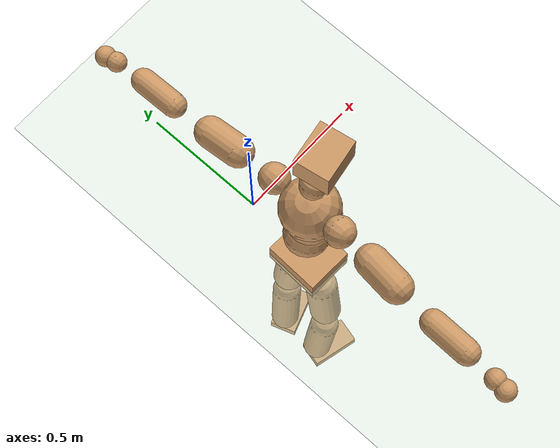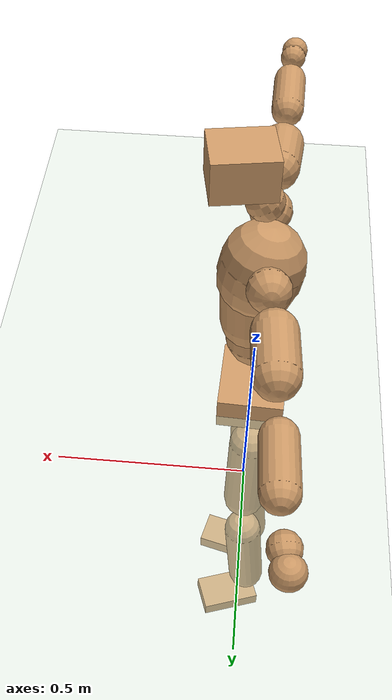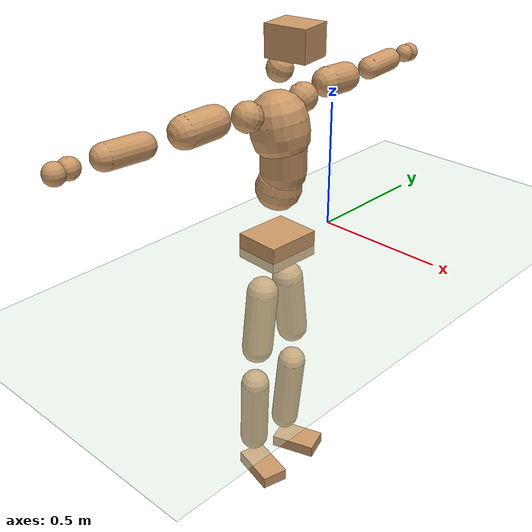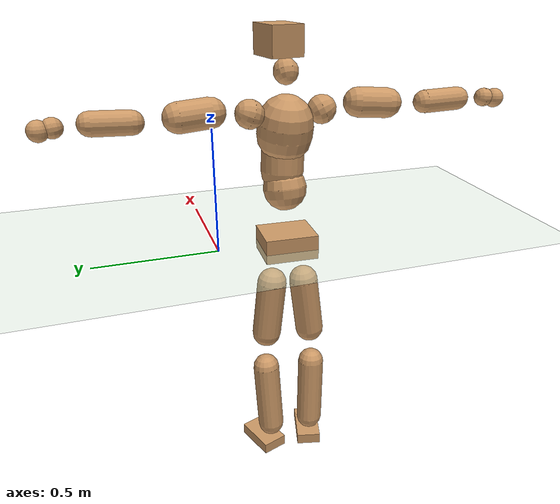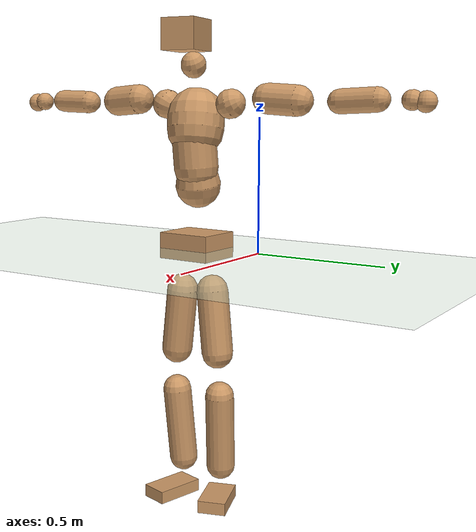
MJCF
<mujoco model="humanoid">
  <compiler coordinate="local" angle="radian"/>
  <default>
    <joint damping="0.0" armature="0.01" stiffness="0.0" limited="true"/>
    <geom conaffinity="1" condim="3" contype="7" margin="0.001" rgba="0.8 0.6 .4 1"/>
  </default>
  <asset>
    <texture type="skybox" builtin="gradient" rgb1=".4 .5 .6" rgb2="0 0 0" width="100" height="100"/>
    <texture builtin="flat" height="1278" mark="cross" markrgb="1 1 1" name="texgeom" random="0.01" rgb1="0.8 0.6 0.4" rgb2="0.8 0.6 0.4" type="cube" width="127"/>
    <texture builtin="checker" height="100" name="texplane" rgb1="0 0 0" rgb2="0.8 0.8 0.8" type="2d" width="100"/>
    <material name="MatPlane" reflectance="0.5" shininess="1" specular="1" texrepeat="60 60" texture="texplane"/>
    <material name="geom" texture="texgeom" texuniform="true"/>
  </asset>
  <worldbody>
    <light cutoff="100" diffuse="1 1 1" dir="-0 0 -1.3" directional="true" exponent="1" pos="0 0 1.3" specular=".1 .1 .1"/>
    <geom conaffinity="1" condim="3" name="floor" pos="0 0 0" rgba="0.8 0.9 0.8 1" size="100 100 .2" type="plane" material="MatPlane"/>
    <body name="Pelvis" pos="-0.0007 -0.2867 0.0171">
      <freejoint name="Pelvis"/>
      <geom type="box" contype="1" conaffinity="1" density="5359.374894" pos="-0.0119 0.0005 -0.0089" size="0.0918 0.1094 0.0505" quat="0.9998 0.0000 0.0000 -0.0212" name="Pelvis"/>
      <body name="L_Hip" pos="-0.0214 0.0596 -0.094">
        <joint name="L_Hip_x" type="hinge" pos="0 0 0" axis="1 0 0" stiffness="1600" damping="160" armature="0.02" range="-180.0000 180.0000"/>
        <joint name="L_Hip_y" type="hinge" pos="0 0 0" axis="0 1 0" stiffness="1600" damping="160" armature="0.02" range="-180.0000 180.0000"/>
        <joint name="L_Hip_z" type="hinge" pos="0 0 0" axis="0 0 1" stiffness="1600" damping="160" armature="0.02" range="-180.0000 180.0000"/>
        <geom type="capsule" contype="1" conaffinity="1" density="2040.816327" size="0.0618" fromto="0.0018 0.0100 -0.0912 0.0066 0.0372 -0.3393" name="L_Hip"/>
        <body name="L_Knee" pos="0.0084 0.0472 -0.4305">
          <joint name="L_Knee_x" type="hinge" pos="0 0 0" axis="1 0 0" stiffness="1600" damping="160" armature="0.02" range="-180.0000 180.0000"/>
          <joint name="L_Knee_y" type="hinge" pos="0 0 0" axis="0 1 0" stiffness="1600" damping="160" armature="0.02" range="-180.0000 180.0000"/>
          <joint name="L_Knee_z" type="hinge" pos="0 0 0" axis="0 0 1" stiffness="1600" damping="160" armature="0.02" range="-180.0000 180.0000"/>
          <geom type="capsule" contype="1" conaffinity="1" density="1234.567901" size="0.0575" fromto="-0.0076 -0.0030 -0.0871 -0.0340 -0.0133 -0.3889" name="L_Knee"/>
          <body name="L_Ankle" pos="-0.0417 -0.0162 -0.476">
            <joint name="L_Ankle_x" type="hinge" pos="0 0 0" axis="1 0 0" stiffness="1600" damping="160" armature="0.02" range="-180.0000 180.0000"/>
            <joint name="L_Ankle_y" type="hinge" pos="0 0 0" axis="0 1 0" stiffness="1600" damping="160" armature="0.02" range="-180.0000 180.0000"/>
            <joint name="L_Ankle_z" type="hinge" pos="0 0 0" axis="0 0 1" stiffness="1600" damping="160" armature="0.02" range="-180.0000 180.0000"/>
            <geom type="box" contype="1" conaffinity="1" density="999.999979" pos="0.0670 0.0228 -0.0337" size="0.0931 0.0558 0.0247" quat="0.9866 0.0000 0.0000 0.1631" name="L_Ankle"/>
            <body name="L_Toe" pos="0.1339 0.0455 -0.0675">
              <joint name="L_Toe_x" type="hinge" pos="0 0 0" axis="1 0 0" stiffness="1000" damping="100" armature="0.02" range="-180.0000 180.0000"/>
              <joint name="L_Toe_y" type="hinge" pos="0 0 0" axis="0 1 0" stiffness="1000" damping="100" armature="0.02" range="-180.0000 180.0000"/>
              <joint name="L_Toe_z" type="hinge" pos="0 0 0" axis="0 0 1" stiffness="1000" damping="100" armature="0.02" range="-180.0000 180.0000"/>
              <geom type="box" contype="1" conaffinity="1" density="7949787.876984" pos="0.0000 0.0000 0.0351" size="0.0011 0.0026 0.0013" quat="0.9859 0.0000 0.0000 0.1674" name="L_Toe"/>
            </body>
          </body>
        </body>
      </body>
      <body name="R_Hip" pos="-0.0182 -0.0614 -0.1034">
        <joint name="R_Hip_x" type="hinge" pos="0 0 0" axis="1 0 0" stiffness="1600" damping="160" armature="0.02" range="-180.0000 180.0000"/>
        <joint name="R_Hip_y" type="hinge" pos="0 0 0" axis="0 1 0" stiffness="1600" damping="160" armature="0.02" range="-180.0000 180.0000"/>
        <joint name="R_Hip_z" type="hinge" pos="0 0 0" axis="0 0 1" stiffness="1600" damping="160" armature="0.02" range="-180.0000 180.0000"/>
        <geom type="capsule" contype="1" conaffinity="1" density="2040.816327" size="0.0614" fromto="-0.0008 -0.0108 -0.0908 -0.0032 -0.0404 -0.3393" name="R_Hip"/>
        <body name="R_Knee" pos="-0.004 -0.0512 -0.4301">
          <joint name="R_Knee_x" type="hinge" pos="0 0 0" axis="1 0 0" stiffness="1600" damping="160" armature="0.02" range="-180.0000 180.0000"/>
          <joint name="R_Knee_y" type="hinge" pos="0 0 0" axis="0 1 0" stiffness="1600" damping="160" armature="0.02" range="-180.0000 180.0000"/>
          <joint name="R_Knee_z" type="hinge" pos="0 0 0" axis="0 0 1" stiffness="1600" damping="160" armature="0.02" range="-180.0000 180.0000"/>
          <geom type="capsule" contype="1" conaffinity="1" density="1234.567901" size="0.0575" fromto="-0.0069 0.0042 -0.0871 -0.0304 0.0184 -0.3852" name="R_Knee"/>
          <body name="R_Ankle" pos="-0.0373 0.0226 -0.4723">
            <joint name="R_Ankle_x" type="hinge" pos="0 0 0" axis="1 0 0" stiffness="1600" damping="160" armature="0.02" range="-180.0000 180.0000"/>
            <joint name="R_Ankle_y" type="hinge" pos="0 0 0" axis="0 1 0" stiffness="1600" damping="160" armature="0.02" range="-180.0000 180.0000"/>
            <joint name="R_Ankle_z" type="hinge" pos="0 0 0" axis="0 0 1" stiffness="1600" damping="160" armature="0.02" range="-180.0000 180.0000"/>
            <geom type="box" contype="1" conaffinity="1" density="1000.000006" pos="0.0719 -0.0184 -0.0357" size="0.0988 0.0536 0.0249" quat="0.9922 0.0000 0.0000 -0.1246" name="R_Ankle"/>
            <body name="R_Toe" pos="0.1438 -0.0367 -0.0714">
              <joint name="R_Toe_x" type="hinge" pos="0 0 0" axis="1 0 0" stiffness="1000" damping="100" armature="0.02" range="-180.0000 180.0000"/>
              <joint name="R_Toe_y" type="hinge" pos="0 0 0" axis="0 1 0" stiffness="1000" damping="100" armature="0.02" range="-180.0000 180.0000"/>
              <joint name="R_Toe_z" type="hinge" pos="0 0 0" axis="0 0 1" stiffness="1000" damping="100" armature="0.02" range="-180.0000 180.0000"/>
              <geom type="box" contype="1" conaffinity="1" density="8037459.608779" pos="0.0000 0.0000 0.0373" size="0.0011 0.0026 0.0013" quat="0.9932 0.0000 0.0000 -0.1166" name="R_Toe"/>
            </body>
          </body>
        </body>
      </body>
      <body name="Torso" pos="-0.0314 0.0048 0.1441">
        <joint name="Torso_x" type="hinge" pos="0 0 0" axis="1 0 0" stiffness="2000" damping="200" armature="0.02" range="-180.0000 180.0000"/>
        <joint name="Torso_y" type="hinge" pos="0 0 0" axis="0 1 0" stiffness="2000" damping="200" armature="0.02" range="-180.0000 180.0000"/>
        <joint name="Torso_z" type="hinge" pos="0 0 0" axis="0 0 1" stiffness="2000" damping="200" armature="0.02" range="-180.0000 180.0000"/>
        <geom type="capsule" contype="1" conaffinity="1" density="2040.816327" size="0.0878" fromto="0.0198 0.0033 0.0855 0.0188 0.0031 0.0810" name="Torso"/>
        <body name="Spine" pos="0.0386 0.0064 0.1665">
          <joint name="Spine_x" type="hinge" pos="0 0 0" axis="1 0 0" stiffness="2000" damping="200" armature="0.02" range="-180.0000 180.0000"/>
          <joint name="Spine_y" type="hinge" pos="0 0 0" axis="0 1 0" stiffness="2000" damping="200" armature="0.02" range="-180.0000 180.0000"/>
          <joint name="Spine_z" type="hinge" pos="0 0 0" axis="0 0 1" stiffness="2000" damping="200" armature="0.02" range="-180.0000 180.0000"/>
          <geom type="capsule" contype="1" conaffinity="1" density="2040.816327" size="0.0856" fromto="0.0039 -0.0047 0.0854 -0.0008 0.0010 -0.0177" name="Spine"/>
          <body name="Chest" pos="0.0031 -0.0037 0.0678">
            <joint name="Chest_x" type="hinge" pos="0 0 0" axis="1 0 0" stiffness="2000" damping="200" armature="0.02" range="-180.0000 180.0000"/>
            <joint name="Chest_y" type="hinge" pos="0 0 0" axis="0 1 0" stiffness="2000" damping="200" armature="0.02" range="-180.0000 180.0000"/>
            <joint name="Chest_z" type="hinge" pos="0 0 0" axis="0 0 1" stiffness="2000" damping="200" armature="0.02" range="-180.0000 180.0000"/>
            <geom type="capsule" contype="1" conaffinity="1" density="2040.816327" size="0.1092" fromto="-0.0196 -0.0059 0.1073 -0.0110 -0.0033 0.0600" name="Chest"/>
            <body name="Neck" pos="-0.0391 -0.0147 0.245">
              <joint name="Neck_x" type="hinge" pos="0 0 0" axis="1 0 0" stiffness="1000" damping="100" armature="0.02" range="-180.0000 180.0000"/>
              <joint name="Neck_y" type="hinge" pos="0 0 0" axis="0 1 0" stiffness="1000" damping="100" armature="0.02" range="-180.0000 180.0000"/>
              <joint name="Neck_z" type="hinge" pos="0 0 0" axis="0 0 1" stiffness="1000" damping="100" armature="0.02" range="-180.0000 180.0000"/>
              <geom type="capsule" contype="1" conaffinity="1" density="1000" size="0.0485" fromto="0.0287 0.0040 0.0514 0.0297 0.0041 0.0531" name="Neck"/>
              <body name="Head" pos="0.0584 0.0081 0.1045">
                <joint name="Head_x" type="hinge" pos="0 0 0" axis="1 0 0" stiffness="1000" damping="100" armature="0.02" range="-180.0000 180.0000"/>
                <joint name="Head_y" type="hinge" pos="0 0 0" axis="0 1 0" stiffness="1000" damping="100" armature="0.02" range="-180.0000 180.0000"/>
                <joint name="Head_z" type="hinge" pos="0 0 0" axis="0 0 1" stiffness="1000" damping="100" armature="0.02" range="-180.0000 180.0000"/>
                <geom type="box" contype="1" conaffinity="1" density="2249.999949" pos="0.0302 0.0051 0.0533" size="0.0805 0.0658 0.0577" quat="0.9966 0.0000 0.0000 0.0829" name="Head"/>
              </body>
            </body>
            <body name="L_Thorax" pos="-0.0251 0.0764 0.129">
              <joint name="L_Thorax_x" type="hinge" pos="0 0 0" axis="1 0 0" stiffness="1000" damping="100" armature="0.02" range="-180.0000 180.0000"/>
              <joint name="L_Thorax_y" type="hinge" pos="0 0 0" axis="0 1 0" stiffness="1000" damping="100" armature="0.02" range="-180.0000 180.0000"/>
              <joint name="L_Thorax_z" type="hinge" pos="0 0 0" axis="0 0 1" stiffness="1000" damping="100" armature="0.02" range="-180.0000 180.0000"/>
              <geom type="capsule" contype="1" conaffinity="1" density="1000" size="0.0557" fromto="-0.0092 0.0616 0.0242 -0.0094 0.0635 0.0249" name="L_Thorax"/>
              <body name="L_Shoulder" pos="-0.0186 0.1251 0.0491">
                <joint name="L_Shoulder_x" type="hinge" pos="0 0 0" axis="1 0 0" stiffness="1000" damping="100" armature="0.02" range="-720.0000 720.0000"/>
                <joint name="L_Shoulder_y" type="hinge" pos="0 0 0" axis="0 1 0" stiffness="1000" damping="100" armature="0.02" range="-720.0000 720.0000"/>
                <joint name="L_Shoulder_z" type="hinge" pos="0 0 0" axis="0 0 1" stiffness="1000" damping="100" armature="0.02" range="-720.0000 720.0000"/>
                <geom type="capsule" contype="1" conaffinity="1" density="1000" size="0.0566" fromto="-0.0059 0.0862 -0.0058 -0.0142 0.2061 -0.0139" name="L_Shoulder"/>
                <body name="L_Elbow" pos="-0.0201 0.2922 -0.0197">
                  <joint name="L_Elbow_x" type="hinge" pos="0 0 0" axis="1 0 0" stiffness="1000" damping="100" armature="0.02" range="-720.0000 720.0000"/>
                  <joint name="L_Elbow_y" type="hinge" pos="0 0 0" axis="0 1 0" stiffness="1000" damping="100" armature="0.02" range="-720.0000 720.0000"/>
                  <joint name="L_Elbow_z" type="hinge" pos="0 0 0" axis="0 0 1" stiffness="1000" damping="100" armature="0.02" range="-720.0000 720.0000"/>
                  <geom type="capsule" contype="1" conaffinity="1" density="1000" size="0.044" fromto="-0.0026 0.0739 0.0031 -0.0074 0.2122 0.0090" name="L_Elbow"/>
                  <body name="L_Wrist" pos="-0.01 0.2861 0.0121">
                    <joint name="L_Wrist_x" type="hinge" pos="0 0 0" axis="1 0 0" stiffness="600" damping="60" armature="0.02" range="-180.0000 180.0000"/>
                    <joint name="L_Wrist_y" type="hinge" pos="0 0 0" axis="0 1 0" stiffness="600" damping="60" armature="0.02" range="-180.0000 180.0000"/>
                    <joint name="L_Wrist_z" type="hinge" pos="0 0 0" axis="0 0 1" stiffness="600" damping="60" armature="0.02" range="-180.0000 180.0000"/>
                    <geom type="capsule" contype="1" conaffinity="1" density="1000" size="0.0357" fromto="-0.0080 0.0440 -0.0052 -0.0083 0.0460 -0.0054" name="L_Wrist"/>
                    <body name="L_Hand" pos="-0.0163 0.09 -0.0106">
                      <joint name="L_Hand_x" type="hinge" pos="0 0 0" axis="1 0 0" stiffness="600" damping="60" armature="0.02" range="-180.0000 180.0000"/>
                      <joint name="L_Hand_y" type="hinge" pos="0 0 0" axis="0 1 0" stiffness="600" damping="60" armature="0.02" range="-180.0000 180.0000"/>
                      <joint name="L_Hand_z" type="hinge" pos="0 0 0" axis="0 0 1" stiffness="600" damping="60" armature="0.02" range="-180.0000 180.0000"/>
                      <geom type="sphere" contype="1" conaffinity="1" density="1000" size="0.0370" pos="0.0000 0.0000 0.0000" name="L_Hand"/>
                    </body>
                  </body>
                </body>
              </body>
            </body>
            <body name="R_Thorax" pos="-0.0275 -0.0893 0.1279">
              <joint name="R_Thorax_x" type="hinge" pos="0 0 0" axis="1 0 0" stiffness="1000" damping="100" armature="0.02" range="-180.0000 180.0000"/>
              <joint name="R_Thorax_y" type="hinge" pos="0 0 0" axis="0 1 0" stiffness="1000" damping="100" armature="0.02" range="-180.0000 180.0000"/>
              <joint name="R_Thorax_z" type="hinge" pos="0 0 0" axis="0 0 1" stiffness="1000" damping="100" armature="0.02" range="-180.0000 180.0000"/>
              <geom type="capsule" contype="1" conaffinity="1" density="1000" size="0.0561" fromto="-0.0031 -0.0579 0.0249 -0.0032 -0.0597 0.0257" name="R_Thorax"/>
              <body name="R_Shoulder" pos="-0.0063 -0.1176 0.0506">
                <joint name="R_Shoulder_x" type="hinge" pos="0 0 0" axis="1 0 0" stiffness="1000" damping="100" armature="0.02" range="-720.0000 720.0000"/>
                <joint name="R_Shoulder_y" type="hinge" pos="0 0 0" axis="0 1 0" stiffness="1000" damping="100" armature="0.02" range="-720.0000 720.0000"/>
                <joint name="R_Shoulder_z" type="hinge" pos="0 0 0" axis="0 0 1" stiffness="1000" damping="100" armature="0.02" range="-720.0000 720.0000"/>
                <geom type="capsule" contype="1" conaffinity="1" density="1000" size="0.0583" fromto="-0.0085 -0.0877 -0.0058 -0.0198 -0.2048 -0.0136" name="R_Shoulder"/>
                <body name="R_Elbow" pos="-0.0282 -0.2925 -0.0194">
                  <joint name="R_Elbow_x" type="hinge" pos="0 0 0" axis="1 0 0" stiffness="1000" damping="100" armature="0.02" range="-720.0000 720.0000"/>
                  <joint name="R_Elbow_y" type="hinge" pos="0 0 0" axis="0 1 0" stiffness="1000" damping="100" armature="0.02" range="-720.0000 720.0000"/>
                  <joint name="R_Elbow_z" type="hinge" pos="0 0 0" axis="0 0 1" stiffness="1000" damping="100" armature="0.02" range="-720.0000 720.0000"/>
                  <geom type="capsule" contype="1" conaffinity="1" density="1000" size="0.0453" fromto="-0.0024 -0.0752 0.0026 -0.0069 -0.2197 0.0077" name="R_Elbow"/>
                  <body name="R_Wrist" pos="-0.0093 -0.2949 0.0104">
                    <joint name="R_Wrist_x" type="hinge" pos="0 0 0" axis="1 0 0" stiffness="600" damping="60" armature="0.02" range="-180.0000 180.0000"/>
                    <joint name="R_Wrist_y" type="hinge" pos="0 0 0" axis="0 1 0" stiffness="600" damping="60" armature="0.02" range="-180.0000 180.0000"/>
                    <joint name="R_Wrist_z" type="hinge" pos="0 0 0" axis="0 0 1" stiffness="600" damping="60" armature="0.02" range="-180.0000 180.0000"/>
                    <geom type="capsule" contype="1" conaffinity="1" density="1000" size="0.0367" fromto="-0.0051 -0.0457 -0.0042 -0.0053 -0.0476 -0.0044" name="R_Wrist"/>
                    <body name="R_Hand" pos="-0.0103 -0.0933 -0.0086">
                      <joint name="R_Hand_x" type="hinge" pos="0 0 0" axis="1 0 0" stiffness="600" damping="60" armature="0.02" range="-180.0000 180.0000"/>
                      <joint name="R_Hand_y" type="hinge" pos="0 0 0" axis="0 1 0" stiffness="600" damping="60" armature="0.02" range="-180.0000 180.0000"/>
                      <joint name="R_Hand_z" type="hinge" pos="0 0 0" axis="0 0 1" stiffness="600" damping="60" armature="0.02" range="-180.0000 180.0000"/>
                      <geom type="sphere" contype="1" conaffinity="1" density="1000" size="0.0380" pos="0.0000 0.0000 0.0000" name="R_Hand"/>
                    </body>
                  </body>
                </body>
              </body>
            </body>
          </body>
        </body>
      </body>
    </body>
  </worldbody>
  <actuator>
    <motor name="L_Hip_x" joint="L_Hip_x" gear="500"/>
    <motor name="L_Hip_y" joint="L_Hip_y" gear="500"/>
    <motor name="L_Hip_z" joint="L_Hip_z" gear="500"/>
    <motor name="L_Knee_x" joint="L_Knee_x" gear="500"/>
    <motor name="L_Knee_y" joint="L_Knee_y" gear="500"/>
    <motor name="L_Knee_z" joint="L_Knee_z" gear="500"/>
    <motor name="L_Ankle_x" joint="L_Ankle_x" gear="500"/>
    <motor name="L_Ankle_y" joint="L_Ankle_y" gear="500"/>
    <motor name="L_Ankle_z" joint="L_Ankle_z" gear="500"/>
    <motor name="L_Toe_x" joint="L_Toe_x" gear="500"/>
    <motor name="L_Toe_y" joint="L_Toe_y" gear="500"/>
    <motor name="L_Toe_z" joint="L_Toe_z" gear="500"/>
    <motor name="R_Hip_x" joint="R_Hip_x" gear="500"/>
    <motor name="R_Hip_y" joint="R_Hip_y" gear="500"/>
    <motor name="R_Hip_z" joint="R_Hip_z" gear="500"/>
    <motor name="R_Knee_x" joint="R_Knee_x" gear="500"/>
    <motor name="R_Knee_y" joint="R_Knee_y" gear="500"/>
    <motor name="R_Knee_z" joint="R_Knee_z" gear="500"/>
    <motor name="R_Ankle_x" joint="R_Ankle_x" gear="500"/>
    <motor name="R_Ankle_y" joint="R_Ankle_y" gear="500"/>
    <motor name="R_Ankle_z" joint="R_Ankle_z" gear="500"/>
    <motor name="R_Toe_x" joint="R_Toe_x" gear="500"/>
    <motor name="R_Toe_y" joint="R_Toe_y" gear="500"/>
    <motor name="R_Toe_z" joint="R_Toe_z" gear="500"/>
    <motor name="Torso_x" joint="Torso_x" gear="500"/>
    <motor name="Torso_y" joint="Torso_y" gear="500"/>
    <motor name="Torso_z" joint="Torso_z" gear="500"/>
    <motor name="Spine_x" joint="Spine_x" gear="500"/>
    <motor name="Spine_y" joint="Spine_y" gear="500"/>
    <motor name="Spine_z" joint="Spine_z" gear="500"/>
    <motor name="Chest_x" joint="Chest_x" gear="500"/>
    <motor name="Chest_y" joint="Chest_y" gear="500"/>
    <motor name="Chest_z" joint="Chest_z" gear="500"/>
    <motor name="Neck_x" joint="Neck_x" gear="500"/>
    <motor name="Neck_y" joint="Neck_y" gear="500"/>
    <motor name="Neck_z" joint="Neck_z" gear="500"/>
    <motor name="Head_x" joint="Head_x" gear="500"/>
    <motor name="Head_y" joint="Head_y" gear="500"/>
    <motor name="Head_z" joint="Head_z" gear="500"/>
    <motor name="L_Thorax_x" joint="L_Thorax_x" gear="500"/>
    <motor name="L_Thorax_y" joint="L_Thorax_y" gear="500"/>
    <motor name="L_Thorax_z" joint="L_Thorax_z" gear="500"/>
    <motor name="L_Shoulder_x" joint="L_Shoulder_x" gear="500"/>
    <motor name="L_Shoulder_y" joint="L_Shoulder_y" gear="500"/>
    <motor name="L_Shoulder_z" joint="L_Shoulder_z" gear="500"/>
    <motor name="L_Elbow_x" joint="L_Elbow_x" gear="500"/>
    <motor name="L_Elbow_y" joint="L_Elbow_y" gear="500"/>
    <motor name="L_Elbow_z" joint="L_Elbow_z" gear="500"/>
    <motor name="L_Wrist_x" joint="L_Wrist_x" gear="500"/>
    <motor name="L_Wrist_y" joint="L_Wrist_y" gear="500"/>
    <motor name="L_Wrist_z" joint="L_Wrist_z" gear="500"/>
    <motor name="L_Hand_x" joint="L_Hand_x" gear="500"/>
    <motor name="L_Hand_y" joint="L_Hand_y" gear="500"/>
    <motor name="L_Hand_z" joint="L_Hand_z" gear="500"/>
    <motor name="R_Thorax_x" joint="R_Thorax_x" gear="500"/>
    <motor name="R_Thorax_y" joint="R_Thorax_y" gear="500"/>
    <motor name="R_Thorax_z" joint="R_Thorax_z" gear="500"/>
    <motor name="R_Shoulder_x" joint="R_Shoulder_x" gear="500"/>
    <motor name="R_Shoulder_y" joint="R_Shoulder_y" gear="500"/>
    <motor name="R_Shoulder_z" joint="R_Shoulder_z" gear="500"/>
    <motor name="R_Elbow_x" joint="R_Elbow_x" gear="500"/>
    <motor name="R_Elbow_y" joint="R_Elbow_y" gear="500"/>
    <motor name="R_Elbow_z" joint="R_Elbow_z" gear="500"/>
    <motor name="R_Wrist_x" joint="R_Wrist_x" gear="500"/>
    <motor name="R_Wrist_y" joint="R_Wrist_y" gear="500"/>
    <motor name="R_Wrist_z" joint="R_Wrist_z" gear="500"/>
    <motor name="R_Hand_x" joint="R_Hand_x" gear="500"/>
    <motor name="R_Hand_y" joint="R_Hand_y" gear="500"/>
    <motor name="R_Hand_z" joint="R_Hand_z" gear="500"/>
  </actuator>
  <contact>
    <exclude body1="Torso" body2="Chest"/>
    <exclude body1="Head" body2="Chest"/>
    <exclude body1="R_Knee" body2="R_Toe"/>
    <exclude body1="R_Knee" body2="L_Ankle"/>
    <exclude body1="R_Knee" body2="L_Toe"/>
    <exclude body1="L_Knee" body2="L_Toe"/>
    <exclude body1="L_Knee" body2="R_Ankle"/>
    <exclude body1="L_Knee" body2="R_Toe"/>
    <exclude body1="L_Shoulder" body2="Chest"/>
    <exclude body1="R_Shoulder" body2="Chest"/>
  </contact>
  <sensor/>
  <size njmax="700" nconmax="700"/>
</mujoco>
